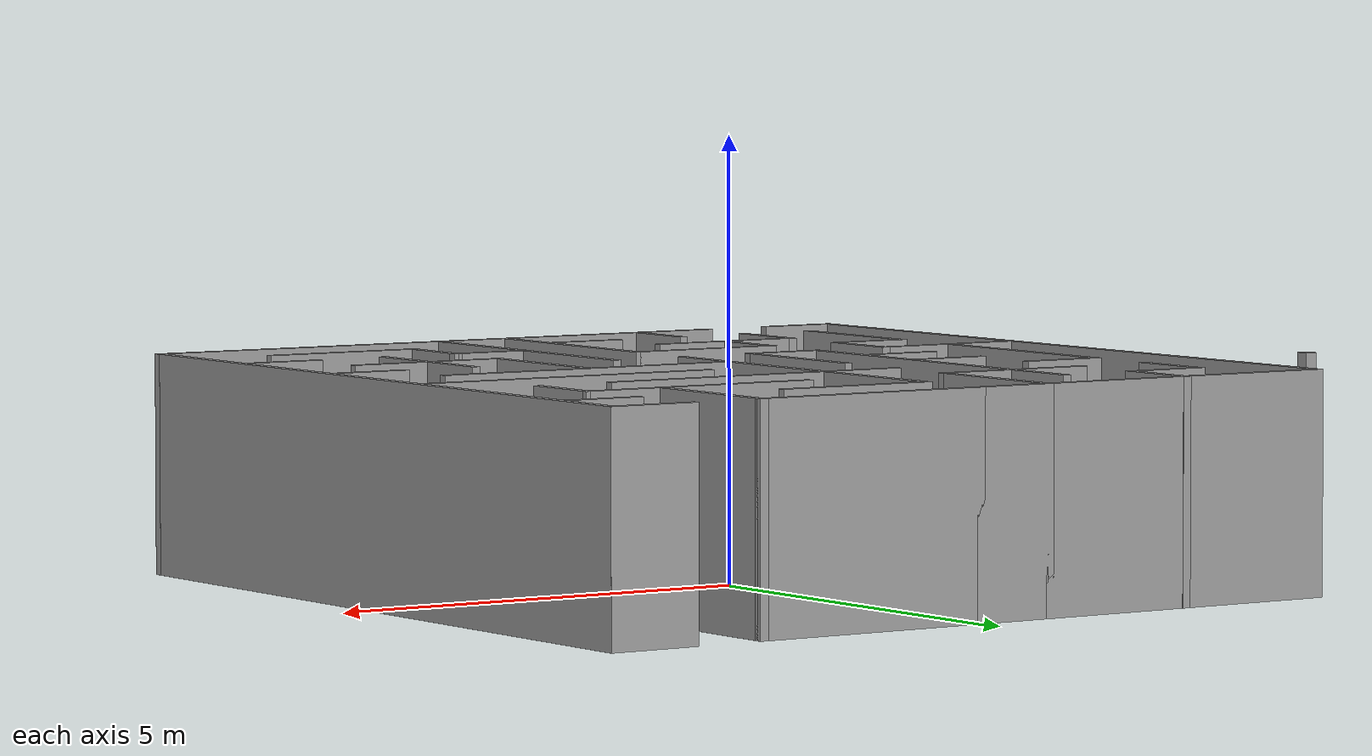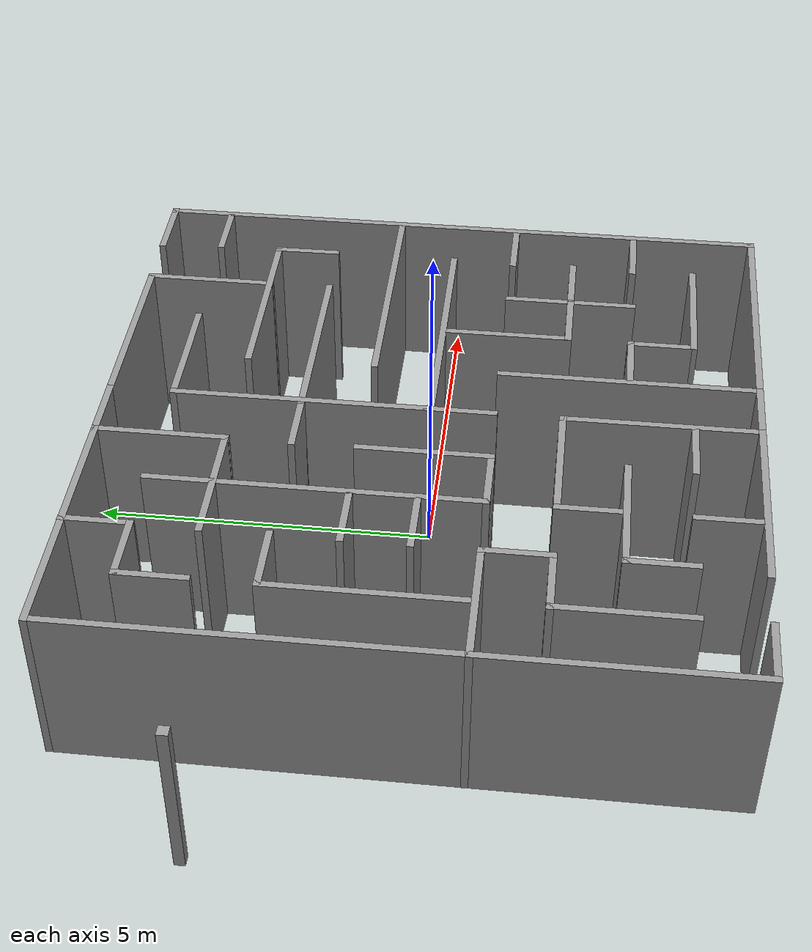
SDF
<?xml version='1.0'?>
<sdf version='1.7'>
  <model name='maze10x10'>
    <pose>-0.803928 0.001944 0 0 -0 0</pose>
    <link name='Wall_104'>
      <collision name='Wall_104_Collision'>
        <geometry>
          <box>
            <size>1.02651 0.1 2.5</size>
          </box>
        </geometry>
        <pose>0 0 1.25 0 -0 0</pose>
      </collision>
      <visual name='Wall_104_Visual'>
        <pose>0 0 1.25 0 -0 0</pose>
        <geometry>
          <box>
            <size>1.02651 0.1 2.5</size>
          </box>
        </geometry>
        <material>
          <script>
            <uri>file://media/materials/scripts/gazebo.material</uri>
            <name>Gazebo/Grey</name>
          </script>
          <ambient>1 1 1 1</ambient>
        </material>
        <meta>
          <layer>0</layer>
        </meta>
      </visual>
      <pose>-2.42257 3.69406 0 0 -0 0</pose>
    </link>
    <link name='Wall_109'>
      <collision name='Wall_109_Collision'>
        <geometry>
          <box>
            <size>1.02 0.1 2.5</size>
          </box>
        </geometry>
        <pose>0 0 1.25 0 -0 0</pose>
      </collision>
      <visual name='Wall_109_Visual'>
        <pose>0 0 1.25 0 -0 0</pose>
        <geometry>
          <box>
            <size>1.02 0.1 2.5</size>
          </box>
        </geometry>
        <material>
          <script>
            <uri>file://media/materials/scripts/gazebo.material</uri>
            <name>Gazebo/Grey</name>
          </script>
          <ambient>1 1 1 1</ambient>
        </material>
        <meta>
          <layer>0</layer>
        </meta>
      </visual>
      <pose>-1.95907 4.15406 0 0 -0 -1.5708</pose>
    </link>
    <link name='Wall_115'>
      <collision name='Wall_115_Collision'>
        <geometry>
          <box>
            <size>1.937 0.1 2.5</size>
          </box>
        </geometry>
        <pose>0 0 1.25 0 -0 0</pose>
      </collision>
      <visual name='Wall_115_Visual'>
        <pose>0 0 1.25 0 -0 0</pose>
        <geometry>
          <box>
            <size>1.937 0.1 2.5</size>
          </box>
        </geometry>
        <material>
          <script>
            <uri>file://media/materials/scripts/gazebo.material</uri>
            <name>Gazebo/Grey</name>
          </script>
          <ambient>1 1 1 1</ambient>
        </material>
        <meta>
          <layer>0</layer>
        </meta>
      </visual>
      <pose>-0.115072 3.69056 0 0 -0 -1.5708</pose>
    </link>
    <link name='Wall_117'>
      <collision name='Wall_117_Collision'>
        <geometry>
          <box>
            <size>1.95874 0.1 2.5</size>
          </box>
        </geometry>
        <pose>0 0 1.25 0 -0 0</pose>
      </collision>
      <visual name='Wall_117_Visual'>
        <pose>0 0 1.25 0 -0 0</pose>
        <geometry>
          <box>
            <size>1.95874 0.1 2.5</size>
          </box>
        </geometry>
        <material>
          <script>
            <uri>file://media/materials/scripts/gazebo.material</uri>
            <name>Gazebo/Grey</name>
          </script>
          <ambient>1 1 1 1</ambient>
        </material>
        <meta>
          <layer>0</layer>
        </meta>
      </visual>
      <pose>-1.04444 2.77216 0 0 -0 -0.000111</pose>
    </link>
    <link name='Wall_12'>
      <collision name='Wall_12_Collision'>
        <geometry>
          <box>
            <size>1.921 0.1 2.5</size>
          </box>
        </geometry>
        <pose>0 0 1.25 0 -0 0</pose>
      </collision>
      <visual name='Wall_12_Visual'>
        <pose>0 0 1.25 0 -0 0</pose>
        <geometry>
          <box>
            <size>1.921 0.1 2.5</size>
          </box>
        </geometry>
        <material>
          <script>
            <uri>file://media/materials/scripts/gazebo.material</uri>
            <name>Gazebo/Grey</name>
          </script>
          <ambient>1 1 1 1</ambient>
        </material>
        <meta>
          <layer>0</layer>
        </meta>
      </visual>
      <pose>1.72522 3.69185 0 0 -0 -0.000229</pose>
    </link>
    <link name='Wall_125'>
      <collision name='Wall_125_Collision'>
        <geometry>
          <box>
            <size>3.789 0.1 2.5</size>
          </box>
        </geometry>
        <pose>0 0 1.25 0 -0 0</pose>
      </collision>
      <visual name='Wall_125_Visual'>
        <pose>0 0 1.25 0 -0 0</pose>
        <geometry>
          <box>
            <size>3.789 0.1 2.5</size>
          </box>
        </geometry>
        <material>
          <script>
            <uri>file://media/materials/scripts/gazebo.material</uri>
            <name>Gazebo/Grey</name>
          </script>
          <ambient>1 1 1 1</ambient>
        </material>
        <meta>
          <layer>0</layer>
        </meta>
      </visual>
      <pose>-1.95957 4.60906 0 0 -0 0</pose>
    </link>
    <link name='Wall_134'>
      <collision name='Wall_134_Collision'>
        <geometry>
          <box>
            <size>2.765 0.1 2.5</size>
          </box>
        </geometry>
        <pose>0 0 1.25 0 -0 0</pose>
      </collision>
      <visual name='Wall_134_Visual'>
        <pose>0 0 1.25 0 -0 0</pose>
        <geometry>
          <box>
            <size>2.765 0.1 2.5</size>
          </box>
        </geometry>
        <material>
          <script>
            <uri>file://media/materials/scripts/gazebo.material</uri>
            <name>Gazebo/Grey</name>
          </script>
          <ambient>1 1 1 1</ambient>
        </material>
        <meta>
          <layer>0</layer>
        </meta>
      </visual>
      <pose>-2.88978 0.515556 0 0 -0 -1.5708</pose>
    </link>
    <link name='Wall_136'>
      <collision name='Wall_136_Collision'>
        <geometry>
          <box>
            <size>1.0327 0.1 2.5</size>
          </box>
        </geometry>
        <pose>0 0 1.25 0 -0 0</pose>
      </collision>
      <visual name='Wall_136_Visual'>
        <pose>0 0 1.25 0 -0 0</pose>
        <geometry>
          <box>
            <size>1.0327 0.1 2.5</size>
          </box>
        </geometry>
        <material>
          <script>
            <uri>file://media/materials/scripts/gazebo.material</uri>
            <name>Gazebo/Grey</name>
          </script>
          <ambient>1 1 1 1</ambient>
        </material>
        <meta>
          <layer>0</layer>
        </meta>
      </visual>
      <pose>-2.42342 1.84806 0 0 -0 3.14159</pose>
    </link>
    <link name='Wall_138'>
      <collision name='Wall_138_Collision'>
        <geometry>
          <box>
            <size>1.93915 0.1 2.5</size>
          </box>
        </geometry>
        <pose>0 0 1.25 0 -0 0</pose>
      </collision>
      <visual name='Wall_138_Visual'>
        <pose>0 0 1.25 0 -0 0</pose>
        <geometry>
          <box>
            <size>1.93915 0.1 2.5</size>
          </box>
        </geometry>
        <material>
          <script>
            <uri>file://media/materials/scripts/gazebo.material</uri>
            <name>Gazebo/Grey</name>
          </script>
          <ambient>1 1 1 1</ambient>
        </material>
        <meta>
          <layer>0</layer>
        </meta>
      </visual>
      <pose>-2.88668 -0.915147 0 0 -0 0.000221</pose>
    </link>
    <link name='Wall_14'>
      <collision name='Wall_14_Collision'>
        <geometry>
          <box>
            <size>1.00111 0.1 2.5</size>
          </box>
        </geometry>
        <pose>0 0 1.25 0 -0 0</pose>
      </collision>
      <visual name='Wall_14_Visual'>
        <pose>0 0 1.25 0 -0 0</pose>
        <geometry>
          <box>
            <size>1.00111 0.1 2.5</size>
          </box>
        </geometry>
        <material>
          <script>
            <uri>file://media/materials/scripts/gazebo.material</uri>
            <name>Gazebo/Grey</name>
          </script>
          <ambient>1 1 1 1</ambient>
        </material>
        <meta>
          <layer>0</layer>
        </meta>
      </visual>
      <pose>0.327428 1.84406 0 0 -0 0</pose>
    </link>
    <link name='Wall_145'>
      <collision name='Wall_145_Collision'>
        <geometry>
          <box>
            <size>1.03205 0.1 2.5</size>
          </box>
        </geometry>
        <pose>0 0 1.25 0 -0 0</pose>
      </collision>
      <visual name='Wall_145_Visual'>
        <pose>0 0 1.25 0 -0 0</pose>
        <geometry>
          <box>
            <size>1.03205 0.1 2.5</size>
          </box>
        </geometry>
        <material>
          <script>
            <uri>file://media/materials/scripts/gazebo.material</uri>
            <name>Gazebo/Grey</name>
          </script>
          <ambient>1 1 1 1</ambient>
        </material>
        <meta>
          <layer>0</layer>
        </meta>
      </visual>
      <pose>-1.96435 -1.38094 0 0 -0 -1.5708</pose>
    </link>
    <link name='Wall_148'>
      <collision name='Wall_148_Collision'>
        <geometry>
          <box>
            <size>1.02061 0.1 2.5</size>
          </box>
        </geometry>
        <pose>0 0 1.25 0 -0 0</pose>
      </collision>
      <visual name='Wall_148_Visual'>
        <pose>0 0 1.25 0 -0 0</pose>
        <geometry>
          <box>
            <size>1.02061 0.1 2.5</size>
          </box>
        </geometry>
        <material>
          <script>
            <uri>file://media/materials/scripts/gazebo.material</uri>
            <name>Gazebo/Grey</name>
          </script>
          <ambient>1 1 1 1</ambient>
        </material>
        <meta>
          <layer>0</layer>
        </meta>
      </visual>
      <pose>-2.42741 -1.84694 0 0 -0 0</pose>
    </link>
    <link name='Wall_150'>
      <collision name='Wall_150_Collision'>
        <geometry>
          <box>
            <size>1.94996 0.1 2.5</size>
          </box>
        </geometry>
        <pose>0 0 1.25 0 -0 0</pose>
      </collision>
      <visual name='Wall_150_Visual'>
        <pose>0 0 1.25 0 -0 0</pose>
        <geometry>
          <box>
            <size>1.94996 0.1 2.5</size>
          </box>
        </geometry>
        <material>
          <script>
            <uri>file://media/materials/scripts/gazebo.material</uri>
            <name>Gazebo/Grey</name>
          </script>
          <ambient>1 1 1 1</ambient>
        </material>
        <meta>
          <layer>0</layer>
        </meta>
      </visual>
      <pose>-2.88217 -2.77194 0 0 -0 -1.5708</pose>
    </link>
    <link name='Wall_155'>
      <collision name='Wall_155_Collision'>
        <geometry>
          <box>
            <size>3.79645 0.1 2.5</size>
          </box>
        </geometry>
        <pose>0 0 1.25 0 -0 0</pose>
      </collision>
      <visual name='Wall_155_Visual'>
        <pose>0 0 1.25 0 -0 0</pose>
        <geometry>
          <box>
            <size>3.79645 0.1 2.5</size>
          </box>
        </geometry>
        <material>
          <script>
            <uri>file://media/materials/scripts/gazebo.material</uri>
            <name>Gazebo/Grey</name>
          </script>
          <ambient>1 1 1 1</ambient>
        </material>
        <meta>
          <layer>0</layer>
        </meta>
      </visual>
      <pose>3.56893 -4.61394 0 0 -0 0</pose>
    </link>
    <link name='Wall_157'>
      <collision name='Wall_157_Collision'>
        <geometry>
          <box>
            <size>1.94608 0.1 2.5</size>
          </box>
        </geometry>
        <pose>0 0 1.25 0 -0 0</pose>
      </collision>
      <visual name='Wall_157_Visual'>
        <pose>0 0 1.25 0 -0 0</pose>
        <geometry>
          <box>
            <size>1.94608 0.1 2.5</size>
          </box>
        </geometry>
        <material>
          <script>
            <uri>file://media/materials/scripts/gazebo.material</uri>
            <name>Gazebo/Grey</name>
          </script>
          <ambient>1 1 1 1</ambient>
        </material>
        <meta>
          <layer>0</layer>
        </meta>
      </visual>
      <pose>3.57177 3.68623 0 0 -0 1.57062</pose>
    </link>
    <link name='Wall_16'>
      <collision name='Wall_16_Collision'>
        <geometry>
          <box>
            <size>2.9 0.1 2.5</size>
          </box>
        </geometry>
        <pose>0 0 1.25 0 -0 0</pose>
      </collision>
      <visual name='Wall_16_Visual'>
        <pose>0 0 1.25 0 -0 0</pose>
        <geometry>
          <box>
            <size>2.9 0.1 2.5</size>
          </box>
        </geometry>
        <material>
          <script>
            <uri>file://media/materials/scripts/gazebo.material</uri>
            <name>Gazebo/Grey</name>
          </script>
          <ambient>1 1 1 1</ambient>
        </material>
        <meta>
          <layer>0</layer>
        </meta>
      </visual>
      <pose>2.17793 1.84406 0 0 -0 0</pose>
    </link>
    <link name='Wall_161'>
      <collision name='Wall_161_Collision'>
        <geometry>
          <box>
            <size>0.95 0.1 2.5</size>
          </box>
        </geometry>
        <pose>0 0 1.25 0 -0 0</pose>
      </collision>
      <visual name='Wall_161_Visual'>
        <pose>0 0 1.25 0 -0 0</pose>
        <geometry>
          <box>
            <size>0.95 0.1 2.5</size>
          </box>
        </geometry>
        <material>
          <script>
            <uri>file://media/materials/scripts/gazebo.material</uri>
            <name>Gazebo/Grey</name>
          </script>
          <ambient>1 1 1 1</ambient>
        </material>
        <meta>
          <layer>0</layer>
        </meta>
      </visual>
      <pose>-1.03942 -4.10673 0 0 -0 1.5708</pose>
    </link>
    <link name='Wall_163'>
      <collision name='Wall_163_Collision'>
        <geometry>
          <box>
            <size>0.95 0.1 2.5</size>
          </box>
        </geometry>
        <pose>0 0 1.25 0 -0 0</pose>
      </collision>
      <visual name='Wall_163_Visual'>
        <pose>0 0 1.25 0 -0 0</pose>
        <geometry>
          <box>
            <size>0.95 0.1 2.5</size>
          </box>
        </geometry>
        <material>
          <script>
            <uri>file://media/materials/scripts/gazebo.material</uri>
            <name>Gazebo/Grey</name>
          </script>
          <ambient>1 1 1 1</ambient>
        </material>
        <meta>
          <layer>0</layer>
        </meta>
      </visual>
      <pose>0.29553 -3.69212 0 0 -0 0</pose>
    </link>
    <link name='Wall_167'>
      <collision name='Wall_167_Collision'>
        <geometry>
          <box>
            <size>1.93873 0.1 2.5</size>
          </box>
        </geometry>
        <pose>0 0 1.25 0 -0 0</pose>
      </collision>
      <visual name='Wall_167_Visual'>
        <pose>0 0 1.25 0 -0 0</pose>
        <geometry>
          <box>
            <size>1.93873 0.1 2.5</size>
          </box>
        </geometry>
        <material>
          <script>
            <uri>file://media/materials/scripts/gazebo.material</uri>
            <name>Gazebo/Grey</name>
          </script>
          <ambient>1 1 1 1</ambient>
        </material>
        <meta>
          <layer>0</layer>
        </meta>
      </visual>
      <pose>-0.112523 -1.84994 0 0 -0 3.14159</pose>
    </link>
    <link name='Wall_171'>
      <collision name='Wall_171_Collision'>
        <geometry>
          <box>
            <size>0.999524 0.1 2.5</size>
          </box>
        </geometry>
        <pose>0 0 1.25 0 -0 0</pose>
      </collision>
      <visual name='Wall_171_Visual'>
        <pose>0 0 1.25 0 -0 0</pose>
        <geometry>
          <box>
            <size>0.999524 0.1 2.5</size>
          </box>
        </geometry>
        <material>
          <script>
            <uri>file://media/materials/scripts/gazebo.material</uri>
            <name>Gazebo/Grey</name>
          </script>
          <ambient>1 1 1 1</ambient>
        </material>
        <meta>
          <layer>0</layer>
        </meta>
      </visual>
      <pose>-1.03752 -2.29994 0 0 -0 -1.5708</pose>
    </link>
    <link name='Wall_173'>
      <collision name='Wall_173_Collision'>
        <geometry>
          <box>
            <size>1.92451 0.1 2.5</size>
          </box>
        </geometry>
        <pose>0 0 1.25 0 -0 0</pose>
      </collision>
      <visual name='Wall_173_Visual'>
        <pose>0 0 1.25 0 -0 0</pose>
        <geometry>
          <box>
            <size>1.92451 0.1 2.5</size>
          </box>
        </geometry>
        <material>
          <script>
            <uri>file://media/materials/scripts/gazebo.material</uri>
            <name>Gazebo/Grey</name>
          </script>
          <ambient>1 1 1 1</ambient>
        </material>
        <meta>
          <layer>0</layer>
        </meta>
      </visual>
      <pose>-1.04781 -2.77296 0 0 -0 -1.4e-05</pose>
    </link>
    <link name='Wall_175'>
      <collision name='Wall_175_Collision'>
        <geometry>
          <box>
            <size>1.02913 0.1 2.5</size>
          </box>
        </geometry>
        <pose>0 0 1.25 0 -0 0</pose>
      </collision>
      <visual name='Wall_175_Visual'>
        <pose>0 0 1.25 0 -0 0</pose>
        <geometry>
          <box>
            <size>1.02913 0.1 2.5</size>
          </box>
        </geometry>
        <material>
          <script>
            <uri>file://media/materials/scripts/gazebo.material</uri>
            <name>Gazebo/Grey</name>
          </script>
          <ambient>1 1 1 1</ambient>
        </material>
        <meta>
          <layer>0</layer>
        </meta>
      </visual>
      <pose>-1.96007 -3.23744 0 0 -0 -1.5708</pose>
    </link>
    <link name='Wall_177'>
      <collision name='Wall_177_Collision'>
        <geometry>
          <box>
            <size>0.95 0.1 2.5</size>
          </box>
        </geometry>
        <pose>0 0 1.25 0 -0 0</pose>
      </collision>
      <visual name='Wall_177_Visual'>
        <pose>0 0 1.25 0 -0 0</pose>
        <geometry>
          <box>
            <size>0.95 0.1 2.5</size>
          </box>
        </geometry>
        <material>
          <script>
            <uri>file://media/materials/scripts/gazebo.material</uri>
            <name>Gazebo/Grey</name>
          </script>
          <ambient>1 1 1 1</ambient>
        </material>
        <meta>
          <layer>0</layer>
        </meta>
      </visual>
      <pose>4.91345 -0.917088 0 0 -0 0</pose>
    </link>
    <link name='Wall_179'>
      <collision name='Wall_179_Collision'>
        <geometry>
          <box>
            <size>2.88 0.1 2.5</size>
          </box>
        </geometry>
        <pose>0 0 1.25 0 -0 0</pose>
      </collision>
      <visual name='Wall_179_Visual'>
        <pose>0 0 1.25 0 -0 0</pose>
        <geometry>
          <box>
            <size>2.88 0.1 2.5</size>
          </box>
        </geometry>
        <material>
          <script>
            <uri>file://media/materials/scripts/gazebo.material</uri>
            <name>Gazebo/Grey</name>
          </script>
          <ambient>1 1 1 1</ambient>
        </material>
        <meta>
          <layer>0</layer>
        </meta>
      </visual>
      <pose>2.18193 4.60906 0 0 -0 0</pose>
    </link>
    <link name='Wall_18'>
      <collision name='Wall_18_Collision'>
        <geometry>
          <box>
            <size>2.89129 0.1 2.5</size>
          </box>
        </geometry>
        <pose>0 0 1.25 0 -0 0</pose>
      </collision>
      <visual name='Wall_18_Visual'>
        <pose>0 0 1.25 0 -0 0</pose>
        <geometry>
          <box>
            <size>2.89129 0.1 2.5</size>
          </box>
        </geometry>
        <material>
          <script>
            <uri>file://media/materials/scripts/gazebo.material</uri>
            <name>Gazebo/Grey</name>
          </script>
          <ambient>1 1 1 1</ambient>
        </material>
        <meta>
          <layer>0</layer>
        </meta>
      </visual>
      <pose>3.10243 2.76806 0 0 -0 0</pose>
    </link>
    <link name='Wall_181'>
      <collision name='Wall_181_Collision'>
        <geometry>
          <box>
            <size>1.014 0.1 2.5</size>
          </box>
        </geometry>
        <pose>0 0 1.25 0 -0 0</pose>
      </collision>
      <visual name='Wall_181_Visual'>
        <pose>0 0 1.25 0 -0 0</pose>
        <geometry>
          <box>
            <size>1.014 0.1 2.5</size>
          </box>
        </geometry>
        <material>
          <script>
            <uri>file://media/materials/scripts/gazebo.material</uri>
            <name>Gazebo/Grey</name>
          </script>
          <ambient>1 1 1 1</ambient>
        </material>
        <meta>
          <layer>0</layer>
        </meta>
      </visual>
      <pose>1.26393 -4.61394 0 0 -0 0</pose>
    </link>
    <link name='Wall_183'>
      <collision name='Wall_183_Collision'>
        <geometry>
          <box>
            <size>2.936 0.1 2.5</size>
          </box>
        </geometry>
        <pose>0 0 1.25 0 -0 0</pose>
      </collision>
      <visual name='Wall_183_Visual'>
        <pose>0 0 1.25 0 -0 0</pose>
        <geometry>
          <box>
            <size>2.936 0.1 2.5</size>
          </box>
        </geometry>
        <material>
          <script>
            <uri>file://media/materials/scripts/gazebo.material</uri>
            <name>Gazebo/Grey</name>
          </script>
          <ambient>1 1 1 1</ambient>
        </material>
        <meta>
          <layer>0</layer>
        </meta>
      </visual>
      <pose>-0.611072 -4.61394 0 0 -0 3.14159</pose>
    </link>
    <link name='Wall_185'>
      <collision name='Wall_185_Collision'>
        <geometry>
          <box>
            <size>1 0.1 2.5</size>
          </box>
        </geometry>
        <pose>0 0 1.25 0 -0 0</pose>
      </collision>
      <visual name='Wall_185_Visual'>
        <pose>0 0 1.25 0 -0 0</pose>
        <geometry>
          <box>
            <size>1 0.1 2.5</size>
          </box>
        </geometry>
        <material>
          <script>
            <uri>file://media/materials/scripts/gazebo.material</uri>
            <name>Gazebo/Grey</name>
          </script>
          <ambient>1 1 1 1</ambient>
        </material>
        <meta>
          <layer>0</layer>
        </meta>
      </visual>
      <pose>-3.35407 -4.61394 0 0 -0 0</pose>
    </link>
    <link name='Wall_189'>
      <collision name='Wall_189_Collision'>
        <geometry>
          <box>
            <size>1.00703 0.1 2.5</size>
          </box>
        </geometry>
        <pose>0 0 1.25 0 -0 0</pose>
      </collision>
      <visual name='Wall_189_Visual'>
        <pose>0 0 1.25 0 -0 0</pose>
        <geometry>
          <box>
            <size>1.00703 0.1 2.5</size>
          </box>
        </geometry>
        <material>
          <script>
            <uri>file://media/materials/scripts/gazebo.material</uri>
            <name>Gazebo/Grey</name>
          </script>
          <ambient>1 1 1 1</ambient>
        </material>
        <meta>
          <layer>0</layer>
        </meta>
      </visual>
      <pose>0.338428 4.60906 0 0 -0 0</pose>
    </link>
    <link name='Wall_19'>
      <collision name='Wall_19_Collision'>
        <geometry>
          <box>
            <size>1 0.1 2.5</size>
          </box>
        </geometry>
        <pose>0 0 1.25 0 -0 0</pose>
      </collision>
      <visual name='Wall_19_Visual'>
        <pose>0 0 1.25 0 -0 0</pose>
        <geometry>
          <box>
            <size>1 0.1 2.5</size>
          </box>
        </geometry>
        <material>
          <script>
            <uri>file://media/materials/scripts/gazebo.material</uri>
            <name>Gazebo/Grey</name>
          </script>
          <ambient>1 1 1 1</ambient>
        </material>
        <meta>
          <layer>0</layer>
        </meta>
      </visual>
      <pose>4.50207 2.31807 0 0 -0 -1.56158</pose>
    </link>
    <link name='Wall_191'>
      <collision name='Wall_191_Collision'>
        <geometry>
          <box>
            <size>1.07872 0.1 2.5</size>
          </box>
        </geometry>
        <pose>0 0 1.25 0 -0 0</pose>
      </collision>
      <visual name='Wall_191_Visual'>
        <pose>0 0 1.25 0 -0 0</pose>
        <geometry>
          <box>
            <size>1.07872 0.1 2.5</size>
          </box>
        </geometry>
        <material>
          <script>
            <uri>file://media/materials/scripts/gazebo.material</uri>
            <name>Gazebo/Grey</name>
          </script>
          <ambient>1 1 1 1</ambient>
        </material>
        <meta>
          <layer>0</layer>
        </meta>
      </visual>
      <pose>4.92043 4.61406 0 0 -0 0</pose>
    </link>
    <link name='Wall_193'>
      <collision name='Wall_193_Collision'>
        <geometry>
          <box>
            <size>3.72594 0.1 2.5</size>
          </box>
        </geometry>
        <pose>0 0 1.25 0 -0 0</pose>
      </collision>
      <visual name='Wall_193_Visual'>
        <pose>0 0 1.25 0 -0 0</pose>
        <geometry>
          <box>
            <size>3.72594 0.1 2.5</size>
          </box>
        </geometry>
        <material>
          <script>
            <uri>file://media/materials/scripts/gazebo.material</uri>
            <name>Gazebo/Grey</name>
          </script>
          <ambient>1 1 1 1</ambient>
        </material>
        <meta>
          <layer>0</layer>
        </meta>
      </visual>
      <pose>0.814928 1.87906 0 0 -0 -1.5708</pose>
    </link>
    <link name='Wall_202'>
      <collision name='Wall_202_Collision'>
        <geometry>
          <box>
            <size>2.864 0.1 2.5</size>
          </box>
        </geometry>
        <pose>0 0 1.25 0 -0 0</pose>
      </collision>
      <visual name='Wall_202_Visual'>
        <pose>0 0 1.25 0 -0 0</pose>
        <geometry>
          <box>
            <size>2.864 0.1 2.5</size>
          </box>
        </geometry>
        <material>
          <script>
            <uri>file://media/materials/scripts/gazebo.material</uri>
            <name>Gazebo/Grey</name>
          </script>
          <ambient>1 1 1 1</ambient>
        </material>
        <meta>
          <layer>0</layer>
        </meta>
      </visual>
      <pose>0.806928 -3.23194 0 0 -0 -1.5708</pose>
    </link>
    <link name='Wall_204'>
      <collision name='Wall_204_Collision'>
        <geometry>
          <box>
            <size>1.05 0.1 2.5</size>
          </box>
        </geometry>
        <pose>0 0 1.25 0 -0 0</pose>
      </collision>
      <visual name='Wall_204_Visual'>
        <pose>0 0 1.25 0 -0 0</pose>
        <geometry>
          <box>
            <size>1.05 0.1 2.5</size>
          </box>
        </geometry>
        <material>
          <script>
            <uri>file://media/materials/scripts/gazebo.material</uri>
            <name>Gazebo/Grey</name>
          </script>
          <ambient>1 1 1 1</ambient>
        </material>
        <meta>
          <layer>0</layer>
        </meta>
      </visual>
      <pose>0.814928 -0.408944 0 0 -0 -1.5708</pose>
    </link>
    <link name='Wall_23'>
      <collision name='Wall_23_Collision'>
        <geometry>
          <box>
            <size>0.95 0.1 2.5</size>
          </box>
        </geometry>
        <pose>0 0 1.25 0 -0 0</pose>
      </collision>
      <visual name='Wall_23_Visual'>
        <pose>0 0 1.25 0 -0 0</pose>
        <geometry>
          <box>
            <size>0.95 0.1 2.5</size>
          </box>
        </geometry>
        <material>
          <script>
            <uri>file://media/materials/scripts/gazebo.material</uri>
            <name>Gazebo/Grey</name>
          </script>
          <ambient>1 1 1 1</ambient>
        </material>
        <meta>
          <layer>0</layer>
        </meta>
      </visual>
      <pose>4.92005 3.69206 0 0 -0 0</pose>
    </link>
    <link name='Wall_25'>
      <collision name='Wall_25_Collision'>
        <geometry>
          <box>
            <size>9.32785 0.1 2.5</size>
          </box>
        </geometry>
        <pose>0 0 1.25 0 -0 0</pose>
      </collision>
      <visual name='Wall_25_Visual'>
        <pose>0 0 1.25 0 -0 0</pose>
        <geometry>
          <box>
            <size>9.32785 0.1 2.5</size>
          </box>
        </geometry>
        <material>
          <script>
            <uri>file://media/materials/scripts/gazebo.material</uri>
            <name>Gazebo/Grey</name>
          </script>
          <ambient>1 1 1 1</ambient>
        </material>
        <meta>
          <layer>0</layer>
        </meta>
      </visual>
      <pose>5.41343 5.6e-05 0 0 -0 -1.57004</pose>
    </link>
    <link name='Wall_27'>
      <collision name='Wall_27_Collision'>
        <geometry>
          <box>
            <size>3.79796 0.1 2.5</size>
          </box>
        </geometry>
        <pose>0 0 1.25 0 -0 0</pose>
      </collision>
      <visual name='Wall_27_Visual'>
        <pose>0 0 1.25 0 -0 0</pose>
        <geometry>
          <box>
            <size>3.79796 0.1 2.5</size>
          </box>
        </geometry>
        <material>
          <script>
            <uri>file://media/materials/scripts/gazebo.material</uri>
            <name>Gazebo/Grey</name>
          </script>
          <ambient>1 1 1 1</ambient>
        </material>
        <meta>
          <layer>0</layer>
        </meta>
      </visual>
      <pose>1.72509 -2.76497 0 0 -0 -1.57305</pose>
    </link>
    <link name='Wall_31'>
      <collision name='Wall_31_Collision'>
        <geometry>
          <box>
            <size>0.95 0.1 2.5</size>
          </box>
        </geometry>
        <pose>0 0 1.25 0 -0 0</pose>
      </collision>
      <visual name='Wall_31_Visual'>
        <pose>0 0 1.25 0 -0 0</pose>
        <geometry>
          <box>
            <size>0.95 0.1 2.5</size>
          </box>
        </geometry>
        <material>
          <script>
            <uri>file://media/materials/scripts/gazebo.material</uri>
            <name>Gazebo/Grey</name>
          </script>
          <ambient>1 1 1 1</ambient>
        </material>
        <meta>
          <layer>0</layer>
        </meta>
      </visual>
      <pose>2.22893 -2.77138 0 0 -0 0</pose>
    </link>
    <link name='Wall_33'>
      <collision name='Wall_33_Collision'>
        <geometry>
          <box>
            <size>0.941561 0.1 2.5</size>
          </box>
        </geometry>
        <pose>0 0 1.25 0 -0 0</pose>
      </collision>
      <visual name='Wall_33_Visual'>
        <pose>0 0 1.25 0 -0 0</pose>
        <geometry>
          <box>
            <size>0.941561 0.1 2.5</size>
          </box>
        </geometry>
        <material>
          <script>
            <uri>file://media/materials/scripts/gazebo.material</uri>
            <name>Gazebo/Grey</name>
          </script>
          <ambient>1 1 1 1</ambient>
        </material>
        <meta>
          <layer>0</layer>
        </meta>
      </visual>
      <pose>2.64549 -3.19216 0 0 -0 -1.5708</pose>
    </link>
    <link name='Wall_35'>
      <collision name='Wall_35_Collision'>
        <geometry>
          <box>
            <size>1.95 0.1 2.5</size>
          </box>
        </geometry>
        <pose>0 0 1.25 0 -0 0</pose>
      </collision>
      <visual name='Wall_35_Visual'>
        <pose>0 0 1.25 0 -0 0</pose>
        <geometry>
          <box>
            <size>1.95 0.1 2.5</size>
          </box>
        </geometry>
        <material>
          <script>
            <uri>file://media/materials/scripts/gazebo.material</uri>
            <name>Gazebo/Grey</name>
          </script>
          <ambient>1 1 1 1</ambient>
        </material>
        <meta>
          <layer>0</layer>
        </meta>
      </visual>
      <pose>3.57405 -3.69238 0 0 -0 3.14159</pose>
    </link>
    <link name='Wall_37'>
      <collision name='Wall_37_Collision'>
        <geometry>
          <box>
            <size>0.95 0.1 2.5</size>
          </box>
        </geometry>
        <pose>0 0 1.25 0 -0 0</pose>
      </collision>
      <visual name='Wall_37_Visual'>
        <pose>0 0 1.25 0 -0 0</pose>
        <geometry>
          <box>
            <size>0.95 0.1 2.5</size>
          </box>
        </geometry>
        <material>
          <script>
            <uri>file://media/materials/scripts/gazebo.material</uri>
            <name>Gazebo/Grey</name>
          </script>
          <ambient>1 1 1 1</ambient>
        </material>
        <meta>
          <layer>0</layer>
        </meta>
      </visual>
      <pose>4.90125 -2.77027 0 0 -0 0</pose>
    </link>
    <link name='Wall_42'>
      <collision name='Wall_42_Collision'>
        <geometry>
          <box>
            <size>1.96 0.1 2.5</size>
          </box>
        </geometry>
        <pose>0 0 1.25 0 -0 0</pose>
      </collision>
      <visual name='Wall_42_Visual'>
        <pose>0 0 1.25 0 -0 0</pose>
        <geometry>
          <box>
            <size>1.96 0.1 2.5</size>
          </box>
        </geometry>
        <material>
          <script>
            <uri>file://media/materials/scripts/gazebo.material</uri>
            <name>Gazebo/Grey</name>
          </script>
          <ambient>1 1 1 1</ambient>
        </material>
        <meta>
          <layer>0</layer>
        </meta>
      </visual>
      <pose>3.57843 -1.8435 0 0 -0 1.5708</pose>
    </link>
    <link name='Wall_44'>
      <collision name='Wall_44_Collision'>
        <geometry>
          <box>
            <size>1.93724 0.1 2.5</size>
          </box>
        </geometry>
        <pose>0 0 1.25 0 -0 0</pose>
      </collision>
      <visual name='Wall_44_Visual'>
        <pose>0 0 1.25 0 -0 0</pose>
        <geometry>
          <box>
            <size>1.93724 0.1 2.5</size>
          </box>
        </geometry>
        <material>
          <script>
            <uri>file://media/materials/scripts/gazebo.material</uri>
            <name>Gazebo/Grey</name>
          </script>
          <ambient>1 1 1 1</ambient>
        </material>
        <meta>
          <layer>0</layer>
        </meta>
      </visual>
      <pose>3.59331 -1.84794 0 0 -0 0</pose>
    </link>
    <link name='Wall_46'>
      <collision name='Wall_46_Collision'>
        <geometry>
          <box>
            <size>1.95 0.1 2.5</size>
          </box>
        </geometry>
        <pose>0 0 1.25 0 -0 0</pose>
      </collision>
      <visual name='Wall_46_Visual'>
        <pose>0 0 1.25 0 -0 0</pose>
        <geometry>
          <box>
            <size>1.95 0.1 2.5</size>
          </box>
        </geometry>
        <material>
          <script>
            <uri>file://media/materials/scripts/gazebo.material</uri>
            <name>Gazebo/Grey</name>
          </script>
          <ambient>1 1 1 1</ambient>
        </material>
        <meta>
          <layer>0</layer>
        </meta>
      </visual>
      <pose>2.66554 -0.92317 0 0 -0 1.5738</pose>
    </link>
    <link name='Wall_50'>
      <collision name='Wall_50_Collision'>
        <geometry>
          <box>
            <size>3.70027 0.1 2.5</size>
          </box>
        </geometry>
        <pose>0 0 1.25 0 -0 0</pose>
      </collision>
      <visual name='Wall_50_Visual'>
        <pose>0 0 1.25 0 -0 0</pose>
        <geometry>
          <box>
            <size>3.70027 0.1 2.5</size>
          </box>
        </geometry>
        <material>
          <script>
            <uri>file://media/materials/scripts/gazebo.material</uri>
            <name>Gazebo/Grey</name>
          </script>
          <ambient>1 1 1 1</ambient>
        </material>
        <meta>
          <layer>0</layer>
        </meta>
      </visual>
      <pose>2.70593 0.007056 0 0 -0 0</pose>
    </link>
    <link name='Wall_53'>
      <collision name='Wall_53_Collision'>
        <geometry>
          <box>
            <size>3.7 0.1 2.5</size>
          </box>
        </geometry>
        <pose>0 0 1.25 0 -0 0</pose>
      </collision>
      <visual name='Wall_53_Visual'>
        <pose>0 0 1.25 0 -0 0</pose>
        <geometry>
          <box>
            <size>3.7 0.1 2.5</size>
          </box>
        </geometry>
        <material>
          <script>
            <uri>file://media/materials/scripts/gazebo.material</uri>
            <name>Gazebo/Grey</name>
          </script>
          <ambient>1 1 1 1</ambient>
        </material>
        <meta>
          <layer>0</layer>
        </meta>
      </visual>
      <pose>3.51981 0.915617 0 0 -0 0</pose>
    </link>
    <link name='Wall_56'>
      <collision name='Wall_56_Collision'>
        <geometry>
          <box>
            <size>1.946 0.1 2.5</size>
          </box>
        </geometry>
        <pose>0 0 1.25 0 -0 0</pose>
      </collision>
      <visual name='Wall_56_Visual'>
        <pose>0 0 1.25 0 -0 0</pose>
        <geometry>
          <box>
            <size>1.946 0.1 2.5</size>
          </box>
        </geometry>
        <material>
          <script>
            <uri>file://media/materials/scripts/gazebo.material</uri>
            <name>Gazebo/Grey</name>
          </script>
          <ambient>1 1 1 1</ambient>
        </material>
        <meta>
          <layer>0</layer>
        </meta>
      </visual>
      <pose>-0.115072 0.007056 0 0 -0 -1.5708</pose>
    </link>
    <link name='Wall_58'>
      <collision name='Wall_58_Collision'>
        <geometry>
          <box>
            <size>1.02019 0.1 2.5</size>
          </box>
        </geometry>
        <pose>0 0 1.25 0 -0 0</pose>
      </collision>
      <visual name='Wall_58_Visual'>
        <pose>0 0 1.25 0 -0 0</pose>
        <geometry>
          <box>
            <size>1.02019 0.1 2.5</size>
          </box>
        </geometry>
        <material>
          <script>
            <uri>file://media/materials/scripts/gazebo.material</uri>
            <name>Gazebo/Grey</name>
          </script>
          <ambient>1 1 1 1</ambient>
        </material>
        <meta>
          <layer>0</layer>
        </meta>
      </visual>
      <pose>-0.575072 -0.915944 0 0 -0 0</pose>
    </link>
    <link name='Wall_61'>
      <collision name='Wall_61_Collision'>
        <geometry>
          <box>
            <size>4.719 0.1 2.5</size>
          </box>
        </geometry>
        <pose>0 0 1.25 0 -0 0</pose>
      </collision>
      <visual name='Wall_61_Visual'>
        <pose>0 0 1.25 0 -0 0</pose>
        <geometry>
          <box>
            <size>4.719 0.1 2.5</size>
          </box>
        </geometry>
        <material>
          <script>
            <uri>file://media/materials/scripts/gazebo.material</uri>
            <name>Gazebo/Grey</name>
          </script>
          <ambient>1 1 1 1</ambient>
        </material>
        <meta>
          <layer>0</layer>
        </meta>
      </visual>
      <pose>-1.03235 1.39356 0 0 -0 -1.57198</pose>
    </link>
    <link name='Wall_66'>
      <collision name='Wall_66_Collision'>
        <geometry>
          <box>
            <size>0.95 0.1 2.5</size>
          </box>
        </geometry>
        <pose>0 0 1.25 0 -0 0</pose>
      </collision>
      <visual name='Wall_66_Visual'>
        <pose>0 0 1.25 0 -0 0</pose>
        <geometry>
          <box>
            <size>0.95 0.1 2.5</size>
          </box>
        </geometry>
        <material>
          <script>
            <uri>file://media/materials/scripts/gazebo.material</uri>
            <name>Gazebo/Grey</name>
          </script>
          <ambient>1 1 1 1</ambient>
        </material>
        <meta>
          <layer>0</layer>
        </meta>
      </visual>
      <pose>-1.53832 0.919177 0 0 -0 0</pose>
    </link>
    <link name='Wall_68'>
      <collision name='Wall_68_Collision'>
        <geometry>
          <box>
            <size>0.95 0.1 2.5</size>
          </box>
        </geometry>
        <pose>0 0 1.25 0 -0 0</pose>
      </collision>
      <visual name='Wall_68_Visual'>
        <pose>0 0 1.25 0 -0 0</pose>
        <geometry>
          <box>
            <size>0.95 0.1 2.5</size>
          </box>
        </geometry>
        <material>
          <script>
            <uri>file://media/materials/scripts/gazebo.material</uri>
            <name>Gazebo/Grey</name>
          </script>
          <ambient>1 1 1 1</ambient>
        </material>
        <meta>
          <layer>0</layer>
        </meta>
      </visual>
      <pose>-1.53832 -0.002383 0 0 -0 0</pose>
    </link>
    <link name='Wall_7'>
      <collision name='Wall_7_Collision'>
        <geometry>
          <box>
            <size>9.323 0.1 2.5</size>
          </box>
        </geometry>
        <pose>0 0 1.25 0 -0 0</pose>
      </collision>
      <visual name='Wall_7_Visual'>
        <pose>0 0 1.25 0 -0 0</pose>
        <geometry>
          <box>
            <size>9.323 0.1 2.5</size>
          </box>
        </geometry>
        <material>
          <script>
            <uri>file://media/materials/scripts/gazebo.material</uri>
            <name>Gazebo/Grey</name>
          </script>
          <ambient>1 1 1 1</ambient>
        </material>
        <meta>
          <layer>0</layer>
        </meta>
      </visual>
      <pose>-3.80407 -0.002444 0 0 -0 -1.5708</pose>
    </link>
    <link name='Wall_86'>
      <collision name='Wall_86_Collision'>
        <geometry>
          <box>
            <size>0.15 0.15 2.5</size>
          </box>
        </geometry>
        <pose>0 0 1.25 0 -0 0</pose>
      </collision>
      <visual name='Wall_86_Visual'>
        <pose>0 0 1.25 0 -0 0</pose>
        <geometry>
          <box>
            <size>0.15 0.15 2.5</size>
          </box>
        </geometry>
        <material>
          <script>
            <uri>file://media/materials/scripts/gazebo.material</uri>
            <name>Gazebo/Grey</name>
          </script>
          <ambient>1 1 1 1</ambient>
        </material>
        <meta>
          <layer>0</layer>
        </meta>
      </visual>
      <pose>-5.39215 2.5153 0 0 -0 0</pose>
    </link>
    <link name='Wall_95'>
      <collision name='Wall_95_Collision'>
        <geometry>
          <box>
            <size>1.04 0.1 2.5</size>
          </box>
        </geometry>
        <pose>0 0 1.25 0 -0 0</pose>
      </collision>
      <visual name='Wall_95_Visual'>
        <pose>0 0 1.25 0 -0 0</pose>
        <geometry>
          <box>
            <size>1.04 0.1 2.5</size>
          </box>
        </geometry>
        <material>
          <script>
            <uri>file://media/materials/scripts/gazebo.material</uri>
            <name>Gazebo/Grey</name>
          </script>
          <ambient>1 1 1 1</ambient>
        </material>
        <meta>
          <layer>0</layer>
        </meta>
      </visual>
      <pose>-2.88607 3.22406 0 0 -0 1.5708</pose>
    </link>
    <static>1</static>
  </model>
</sdf>
